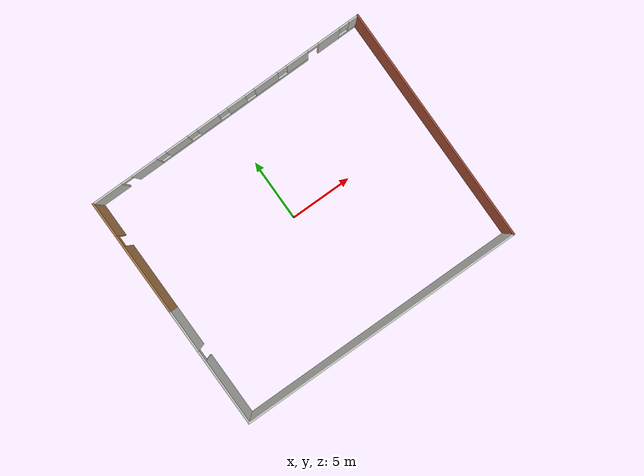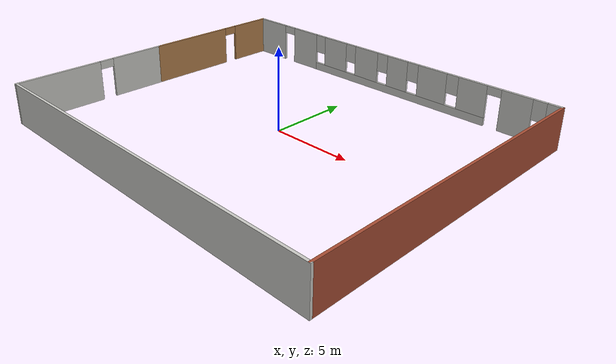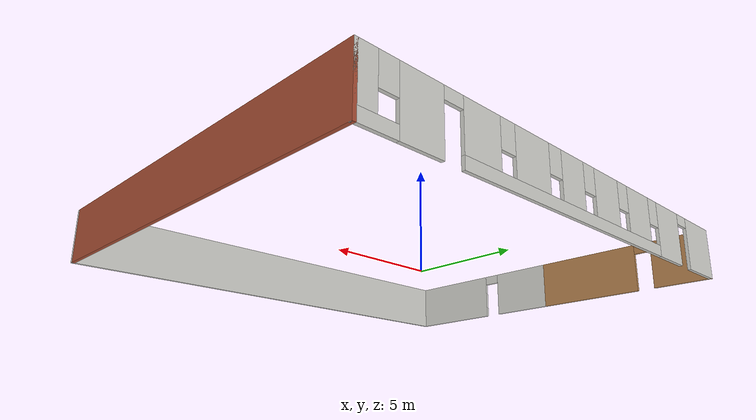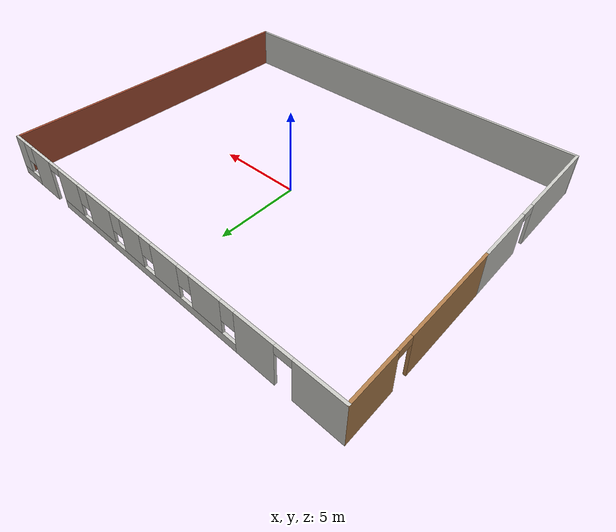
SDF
<?xml version='1.0'?>
<sdf version='1.5'>
  <model name='Surroundingwalls1'>
    <pose>0.493352 -0.530877 0 0 -0 0</pose>
    <link name='Wall_4'>
      <pose>-11.55 4.875 0 0 -0 1.5708</pose>
      <visual name='Wall_4_Visual_0'>
        <pose>-1.89621 0 1.25 0 -0 0</pose>
        <geometry>
          <box>
            <size>5.70757 0.15 2.5</size>
          </box>
        </geometry>
        <material>
          <script>
            <uri>file://media/materials/scripts/gazebo.material</uri>
            <name>Gazebo/Wood</name>
          </script>
          <ambient>0.760784 0.662745 0.627451 1</ambient>
        </material>
      </visual>
      <collision name='Wall_4_Collision_0'>
        <geometry>
          <box>
            <size>5.70757 0.15 2.5</size>
          </box>
        </geometry>
        <pose>-1.89621 0 1.25 0 -0 0</pose>
      </collision>
      <visual name='Wall_4_Visual_1'>
        <pose>3.30378 0 1.25 0 -0 0</pose>
        <geometry>
          <box>
            <size>2.89243 0.15 2.5</size>
          </box>
        </geometry>
        <material>
          <script>
            <uri>file://media/materials/scripts/gazebo.material</uri>
            <name>Gazebo/Wood</name>
          </script>
          <ambient>0.760784 0.662745 0.627451 1</ambient>
        </material>
      </visual>
      <collision name='Wall_4_Collision_1'>
        <geometry>
          <box>
            <size>2.89243 0.15 2.5</size>
          </box>
        </geometry>
        <pose>3.30378 0 1.25 0 -0 0</pose>
      </collision>
      <visual name='Wall_4_Visual_2'>
        <pose>1.40757 0 2.25 0 -0 0</pose>
        <geometry>
          <box>
            <size>0.9 0.15 0.5</size>
          </box>
        </geometry>
        <material>
          <script>
            <uri>file://media/materials/scripts/gazebo.material</uri>
            <name>Gazebo/Wood</name>
          </script>
          <ambient>0.760784 0.662745 0.627451 1</ambient>
        </material>
      </visual>
      <collision name='Wall_4_Collision_2'>
        <geometry>
          <box>
            <size>0.9 0.15 0.5</size>
          </box>
        </geometry>
        <pose>1.40757 0 2.25 0 -0 0</pose>
      </collision>
    </link>
    <link name='Wall_5'>
      <pose>0 9.55 0 0 -0 0</pose>
      <visual name='Wall_5_Visual_0'>
        <pose>-10.3409 0 1.25 0 -0 0</pose>
        <geometry>
          <box>
            <size>2.56815 0.15 2.5</size>
          </box>
        </geometry>
        <material>
          <script>
            <uri>file://media/materials/scripts/gazebo.material</uri>
            <name>Gazebo/CeilingTiled</name>
          </script>
          <ambient>0.435294 0.796078 0.67451 1</ambient>
        </material>
      </visual>
      <collision name='Wall_5_Collision_0'>
        <geometry>
          <box>
            <size>2.56815 0.15 2.5</size>
          </box>
        </geometry>
        <pose>-10.3409 0 1.25 0 -0 0</pose>
      </collision>
      <visual name='Wall_5_Visual_1'>
        <pose>-7.07441 0 1.25 0 -0 0</pose>
        <geometry>
          <box>
            <size>2.16487 0.15 2.5</size>
          </box>
        </geometry>
        <material>
          <script>
            <uri>file://media/materials/scripts/gazebo.material</uri>
            <name>Gazebo/CeilingTiled</name>
          </script>
          <ambient>0.435294 0.796078 0.67451 1</ambient>
        </material>
      </visual>
      <collision name='Wall_5_Collision_1'>
        <geometry>
          <box>
            <size>2.16487 0.15 2.5</size>
          </box>
        </geometry>
        <pose>-7.07441 0 1.25 0 -0 0</pose>
      </collision>
      <visual name='Wall_5_Visual_2'>
        <pose>9.01513 0 1.25 0 -0 0</pose>
        <geometry>
          <box>
            <size>1.85723 0.15 2.5</size>
          </box>
        </geometry>
        <material>
          <script>
            <uri>file://media/materials/scripts/gazebo.material</uri>
            <name>Gazebo/CeilingTiled</name>
          </script>
          <ambient>0.435294 0.796078 0.67451 1</ambient>
        </material>
      </visual>
      <collision name='Wall_5_Collision_2'>
        <geometry>
          <box>
            <size>1.85723 0.15 2.5</size>
          </box>
        </geometry>
        <pose>9.01513 0 1.25 0 -0 0</pose>
      </collision>
      <visual name='Wall_5_Visual_3'>
        <pose>0.597267 0 0.25 0 -0 0</pose>
        <geometry>
          <box>
            <size>13.1785 0.15 0.5</size>
          </box>
        </geometry>
        <material>
          <script>
            <uri>file://media/materials/scripts/gazebo.material</uri>
            <name>Gazebo/CeilingTiled</name>
          </script>
          <ambient>0.435294 0.796078 0.67451 1</ambient>
        </material>
      </visual>
      <collision name='Wall_5_Collision_3'>
        <geometry>
          <box>
            <size>13.1785 0.15 0.5</size>
          </box>
        </geometry>
        <pose>0.597267 0 0.25 0 -0 0</pose>
      </collision>
      <visual name='Wall_5_Visual_4'>
        <pose>10.7844 0 0.25 0 -0 0</pose>
        <geometry>
          <box>
            <size>1.68126 0.15 0.5</size>
          </box>
        </geometry>
        <material>
          <script>
            <uri>file://media/materials/scripts/gazebo.material</uri>
            <name>Gazebo/CeilingTiled</name>
          </script>
          <ambient>0.435294 0.796078 0.67451 1</ambient>
        </material>
      </visual>
      <collision name='Wall_5_Collision_4'>
        <geometry>
          <box>
            <size>1.68126 0.15 0.5</size>
          </box>
        </geometry>
        <pose>10.7844 0 0.25 0 -0 0</pose>
      </collision>
      <visual name='Wall_5_Visual_5'>
        <pose>-4.23837 0 1.5 0 -0 0</pose>
        <geometry>
          <box>
            <size>1.90723 0.15 2</size>
          </box>
        </geometry>
        <material>
          <script>
            <uri>file://media/materials/scripts/gazebo.material</uri>
            <name>Gazebo/CeilingTiled</name>
          </script>
          <ambient>0.435294 0.796078 0.67451 1</ambient>
        </material>
      </visual>
      <collision name='Wall_5_Collision_5'>
        <geometry>
          <box>
            <size>1.90723 0.15 2</size>
          </box>
        </geometry>
        <pose>-4.23837 0 1.5 0 -0 0</pose>
      </collision>
      <visual name='Wall_5_Visual_6'>
        <pose>-1.5619 0 1.5 0 -0 0</pose>
        <geometry>
          <box>
            <size>1.8457 0.15 2</size>
          </box>
        </geometry>
        <material>
          <script>
            <uri>file://media/materials/scripts/gazebo.material</uri>
            <name>Gazebo/CeilingTiled</name>
          </script>
          <ambient>0.435294 0.796078 0.67451 1</ambient>
        </material>
      </visual>
      <collision name='Wall_5_Collision_6'>
        <geometry>
          <box>
            <size>1.8457 0.15 2</size>
          </box>
        </geometry>
        <pose>-1.5619 0 1.5 0 -0 0</pose>
      </collision>
      <visual name='Wall_5_Visual_7'>
        <pose>0.929975 0 1.5 0 -0 0</pose>
        <geometry>
          <box>
            <size>1.53806 0.15 2</size>
          </box>
        </geometry>
        <material>
          <script>
            <uri>file://media/materials/scripts/gazebo.material</uri>
            <name>Gazebo/CeilingTiled</name>
          </script>
          <ambient>0.435294 0.796078 0.67451 1</ambient>
        </material>
      </visual>
      <collision name='Wall_5_Collision_7'>
        <geometry>
          <box>
            <size>1.53806 0.15 2</size>
          </box>
        </geometry>
        <pose>0.929975 0 1.5 0 -0 0</pose>
      </collision>
      <visual name='Wall_5_Visual_8'>
        <pose>3.51415 0 1.5 0 -0 0</pose>
        <geometry>
          <box>
            <size>2.03028 0.15 2</size>
          </box>
        </geometry>
        <material>
          <script>
            <uri>file://media/materials/scripts/gazebo.material</uri>
            <name>Gazebo/CeilingTiled</name>
          </script>
          <ambient>0.435294 0.796078 0.67451 1</ambient>
        </material>
      </visual>
      <collision name='Wall_5_Collision_8'>
        <geometry>
          <box>
            <size>2.03028 0.15 2</size>
          </box>
        </geometry>
        <pose>3.51415 0 1.5 0 -0 0</pose>
      </collision>
      <visual name='Wall_5_Visual_9'>
        <pose>6.2579 0 1.5 0 -0 0</pose>
        <geometry>
          <box>
            <size>1.85723 0.15 2</size>
          </box>
        </geometry>
        <material>
          <script>
            <uri>file://media/materials/scripts/gazebo.material</uri>
            <name>Gazebo/CeilingTiled</name>
          </script>
          <ambient>0.435294 0.796078 0.67451 1</ambient>
        </material>
      </visual>
      <collision name='Wall_5_Collision_9'>
        <geometry>
          <box>
            <size>1.85723 0.15 2</size>
          </box>
        </geometry>
        <pose>6.2579 0 1.5 0 -0 0</pose>
      </collision>
      <visual name='Wall_5_Visual_10'>
        <pose>6.2579 0 1.5 0 -0 0</pose>
        <geometry>
          <box>
            <size>1.85723 0.15 2</size>
          </box>
        </geometry>
        <material>
          <script>
            <uri>file://media/materials/scripts/gazebo.material</uri>
            <name>Gazebo/CeilingTiled</name>
          </script>
          <ambient>0.435294 0.796078 0.67451 1</ambient>
        </material>
      </visual>
      <collision name='Wall_5_Collision_10'>
        <geometry>
          <box>
            <size>1.85723 0.15 2</size>
          </box>
        </geometry>
        <pose>6.2579 0 1.5 0 -0 0</pose>
      </collision>
      <visual name='Wall_5_Visual_11'>
        <pose>11.1844 0 1.5 0 -0 0</pose>
        <geometry>
          <box>
            <size>0.88126 0.15 2</size>
          </box>
        </geometry>
        <material>
          <script>
            <uri>file://media/materials/scripts/gazebo.material</uri>
            <name>Gazebo/CeilingTiled</name>
          </script>
          <ambient>0.435294 0.796078 0.67451 1</ambient>
        </material>
      </visual>
      <collision name='Wall_5_Collision_11'>
        <geometry>
          <box>
            <size>0.88126 0.15 2</size>
          </box>
        </geometry>
        <pose>11.1844 0 1.5 0 -0 0</pose>
      </collision>
      <visual name='Wall_5_Visual_12'>
        <pose>-5.59198 0 1.9 0 -0 0</pose>
        <geometry>
          <box>
            <size>0.8 0.15 1.2</size>
          </box>
        </geometry>
        <material>
          <script>
            <uri>file://media/materials/scripts/gazebo.material</uri>
            <name>Gazebo/CeilingTiled</name>
          </script>
          <ambient>0.435294 0.796078 0.67451 1</ambient>
        </material>
      </visual>
      <collision name='Wall_5_Collision_12'>
        <geometry>
          <box>
            <size>0.8 0.15 1.2</size>
          </box>
        </geometry>
        <pose>-5.59198 0 1.9 0 -0 0</pose>
      </collision>
      <visual name='Wall_5_Visual_13'>
        <pose>10.3437 0 1.9 0 -0 0</pose>
        <geometry>
          <box>
            <size>0.8 0.15 1.2</size>
          </box>
        </geometry>
        <material>
          <script>
            <uri>file://media/materials/scripts/gazebo.material</uri>
            <name>Gazebo/CeilingTiled</name>
          </script>
          <ambient>0.435294 0.796078 0.67451 1</ambient>
        </material>
      </visual>
      <collision name='Wall_5_Collision_13'>
        <geometry>
          <box>
            <size>0.8 0.15 1.2</size>
          </box>
        </geometry>
        <pose>10.3437 0 1.9 0 -0 0</pose>
      </collision>
      <visual name='Wall_5_Visual_14'>
        <pose>-2.88475 0 1.9 0 -0 0</pose>
        <geometry>
          <box>
            <size>0.8 0.15 1.2</size>
          </box>
        </geometry>
        <material>
          <script>
            <uri>file://media/materials/scripts/gazebo.material</uri>
            <name>Gazebo/CeilingTiled</name>
          </script>
          <ambient>0.435294 0.796078 0.67451 1</ambient>
        </material>
      </visual>
      <collision name='Wall_5_Collision_14'>
        <geometry>
          <box>
            <size>0.8 0.15 1.2</size>
          </box>
        </geometry>
        <pose>-2.88475 0 1.9 0 -0 0</pose>
      </collision>
      <visual name='Wall_5_Visual_15'>
        <pose>-0.239055 0 1.9 0 -0 0</pose>
        <geometry>
          <box>
            <size>0.8 0.15 1.2</size>
          </box>
        </geometry>
        <material>
          <script>
            <uri>file://media/materials/scripts/gazebo.material</uri>
            <name>Gazebo/CeilingTiled</name>
          </script>
          <ambient>0.435294 0.796078 0.67451 1</ambient>
        </material>
      </visual>
      <collision name='Wall_5_Collision_15'>
        <geometry>
          <box>
            <size>0.8 0.15 1.2</size>
          </box>
        </geometry>
        <pose>-0.239055 0 1.9 0 -0 0</pose>
      </collision>
      <visual name='Wall_5_Visual_16'>
        <pose>2.099 0 1.9 0 -0 0</pose>
        <geometry>
          <box>
            <size>0.8 0.15 1.2</size>
          </box>
        </geometry>
        <material>
          <script>
            <uri>file://media/materials/scripts/gazebo.material</uri>
            <name>Gazebo/CeilingTiled</name>
          </script>
          <ambient>0.435294 0.796078 0.67451 1</ambient>
        </material>
      </visual>
      <collision name='Wall_5_Collision_16'>
        <geometry>
          <box>
            <size>0.8 0.15 1.2</size>
          </box>
        </geometry>
        <pose>2.099 0 1.9 0 -0 0</pose>
      </collision>
      <visual name='Wall_5_Visual_17'>
        <pose>4.92929 0 1.9 0 -0 0</pose>
        <geometry>
          <box>
            <size>0.8 0.15 1.2</size>
          </box>
        </geometry>
        <material>
          <script>
            <uri>file://media/materials/scripts/gazebo.material</uri>
            <name>Gazebo/CeilingTiled</name>
          </script>
          <ambient>0.435294 0.796078 0.67451 1</ambient>
        </material>
      </visual>
      <collision name='Wall_5_Collision_17'>
        <geometry>
          <box>
            <size>0.8 0.15 1.2</size>
          </box>
        </geometry>
        <pose>4.92929 0 1.9 0 -0 0</pose>
      </collision>
      <visual name='Wall_5_Visual_18'>
        <pose>-8.60685 0 2.25 0 -0 0</pose>
        <geometry>
          <box>
            <size>0.9 0.15 0.5</size>
          </box>
        </geometry>
        <material>
          <script>
            <uri>file://media/materials/scripts/gazebo.material</uri>
            <name>Gazebo/CeilingTiled</name>
          </script>
          <ambient>0.435294 0.796078 0.67451 1</ambient>
        </material>
      </visual>
      <collision name='Wall_5_Collision_18'>
        <geometry>
          <box>
            <size>0.9 0.15 0.5</size>
          </box>
        </geometry>
        <pose>-8.60685 0 2.25 0 -0 0</pose>
      </collision>
      <visual name='Wall_5_Visual_19'>
        <pose>7.63651 0 2.25 0 -0 0</pose>
        <geometry>
          <box>
            <size>0.9 0.15 0.5</size>
          </box>
        </geometry>
        <material>
          <script>
            <uri>file://media/materials/scripts/gazebo.material</uri>
            <name>Gazebo/CeilingTiled</name>
          </script>
          <ambient>0.435294 0.796078 0.67451 1</ambient>
        </material>
      </visual>
      <collision name='Wall_5_Collision_19'>
        <geometry>
          <box>
            <size>0.9 0.15 0.5</size>
          </box>
        </geometry>
        <pose>7.63651 0 2.25 0 -0 0</pose>
      </collision>
      <visual name='Wall_5_Visual_20'>
        <pose>7.63651 0 2.25 0 -0 0</pose>
        <geometry>
          <box>
            <size>0.9 0.15 0.5</size>
          </box>
        </geometry>
        <material>
          <script>
            <uri>file://media/materials/scripts/gazebo.material</uri>
            <name>Gazebo/CeilingTiled</name>
          </script>
          <ambient>0.435294 0.796078 0.67451 1</ambient>
        </material>
      </visual>
      <collision name='Wall_5_Collision_20'>
        <geometry>
          <box>
            <size>0.9 0.15 0.5</size>
          </box>
        </geometry>
        <pose>7.63651 0 2.25 0 -0 0</pose>
      </collision>
    </link>
    <link name='Wall_6'>
      <collision name='Wall_6_Collision'>
        <geometry>
          <box>
            <size>19.25 0.15 2.5</size>
          </box>
        </geometry>
        <pose>0 0 1.25 0 -0 0</pose>
      </collision>
      <visual name='Wall_6_Visual'>
        <pose>0 0 1.25 0 -0 0</pose>
        <geometry>
          <box>
            <size>19.25 0.15 2.5</size>
          </box>
        </geometry>
        <material>
          <script>
            <uri>file://media/materials/scripts/gazebo.material</uri>
            <name>Gazebo/Bricks</name>
          </script>
          <ambient>0.996078 0.47451 0.0196078 1</ambient>
        </material>
      </visual>
      <pose>11.55 0 0 0 0 -1.5708</pose>
    </link>
    <link name='Wall_7'>
      <collision name='Wall_7_Collision'>
        <geometry>
          <box>
            <size>23.25 0.15 2.5</size>
          </box>
        </geometry>
        <pose>0 0 1.25 0 -0 0</pose>
      </collision>
      <visual name='Wall_7_Visual'>
        <pose>0 0 1.25 0 -0 0</pose>
        <geometry>
          <box>
            <size>23.25 0.15 2.5</size>
          </box>
        </geometry>
        <material>
          <script>
            <uri>file://media/materials/scripts/gazebo.material</uri>
            <name>Gazebo/CeilingTiled</name>
          </script>
          <ambient>1 0.764706 0.305882 1</ambient>
        </material>
      </visual>
      <pose>0 -9.55 0 0 -0 3.14159</pose>
    </link>
    <link name='Wall_8'>
      <pose>-11.55 -4.675 0 0 -0 1.5708</pose>
      <visual name='Wall_8_Visual_0'>
        <pose>-2.23574 0 1.25 0 -0 0</pose>
        <geometry>
          <box>
            <size>5.42853 0.15 2.5</size>
          </box>
        </geometry>
        <material>
          <script>
            <uri>file://media/materials/scripts/gazebo.material</uri>
            <name>Gazebo/CeilingTiled</name>
          </script>
          <ambient>0.760784 0.662745 0.627451 1</ambient>
        </material>
      </visual>
      <collision name='Wall_8_Collision_0'>
        <geometry>
          <box>
            <size>5.42853 0.15 2.5</size>
          </box>
        </geometry>
        <pose>-2.23574 0 1.25 0 -0 0</pose>
      </collision>
      <visual name='Wall_8_Visual_1'>
        <pose>3.16426 0 1.25 0 -0 0</pose>
        <geometry>
          <box>
            <size>3.57147 0.15 2.5</size>
          </box>
        </geometry>
        <material>
          <script>
            <uri>file://media/materials/scripts/gazebo.material</uri>
            <name>Gazebo/CeilingTiled</name>
          </script>
          <ambient>0.760784 0.662745 0.627451 1</ambient>
        </material>
      </visual>
      <collision name='Wall_8_Collision_1'>
        <geometry>
          <box>
            <size>3.57147 0.15 2.5</size>
          </box>
        </geometry>
        <pose>3.16426 0 1.25 0 -0 0</pose>
      </collision>
      <visual name='Wall_8_Visual_2'>
        <pose>0.928527 0 2.25 0 -0 0</pose>
        <geometry>
          <box>
            <size>0.9 0.15 0.5</size>
          </box>
        </geometry>
        <material>
          <script>
            <uri>file://media/materials/scripts/gazebo.material</uri>
            <name>Gazebo/CeilingTiled</name>
          </script>
          <ambient>0.760784 0.662745 0.627451 1</ambient>
        </material>
      </visual>
      <collision name='Wall_8_Collision_2'>
        <geometry>
          <box>
            <size>0.9 0.15 0.5</size>
          </box>
        </geometry>
        <pose>0.928527 0 2.25 0 -0 0</pose>
      </collision>
    </link>
    <static>1</static>
  </model>
</sdf>
